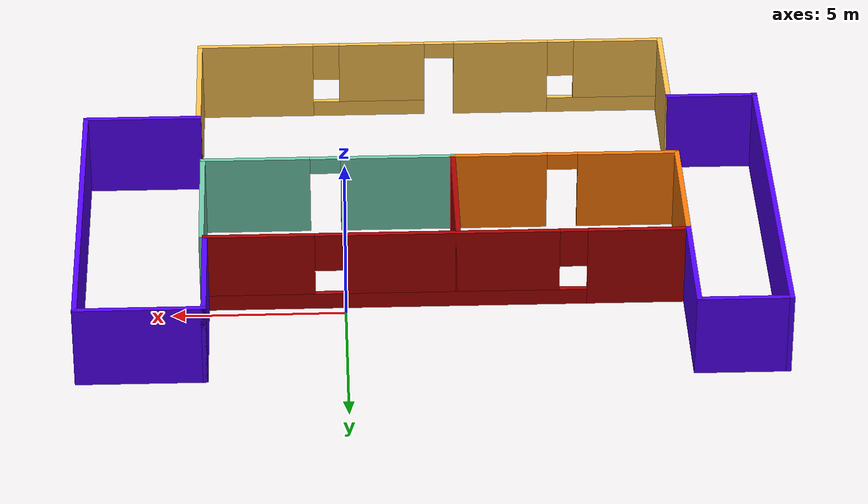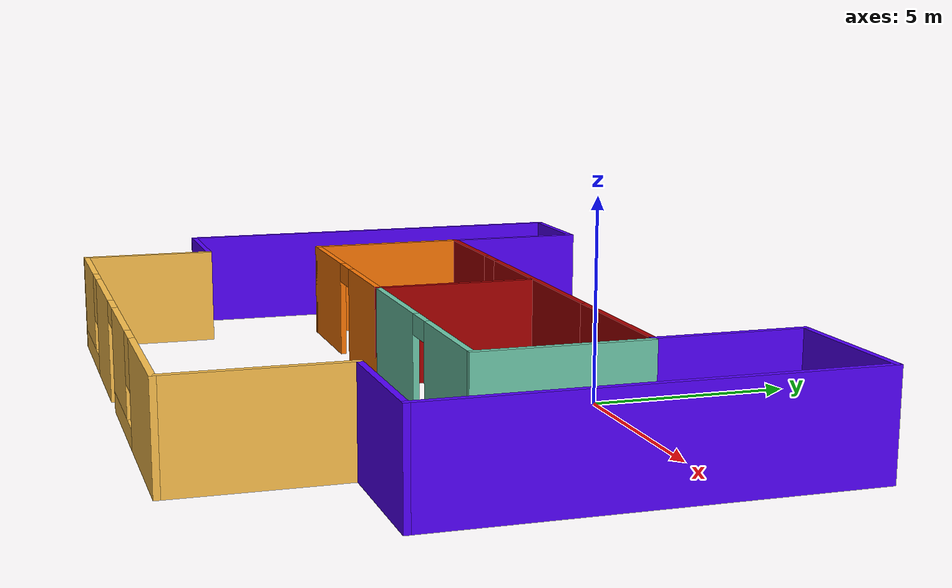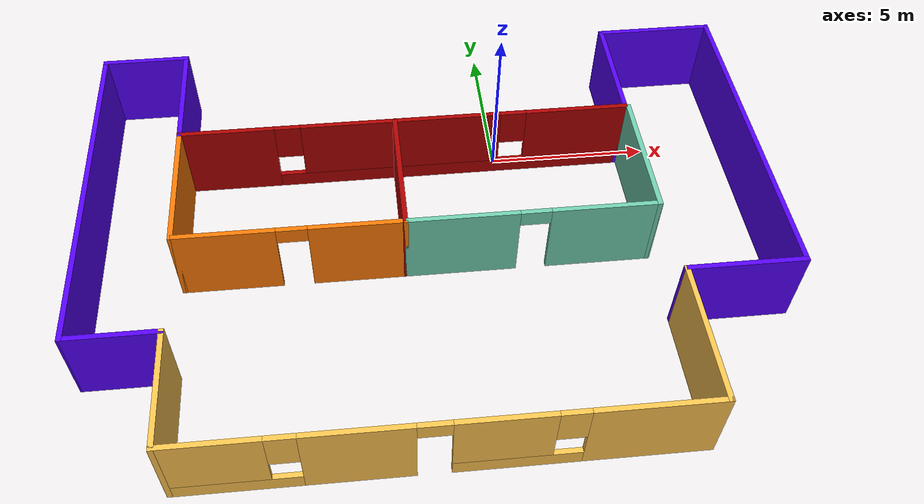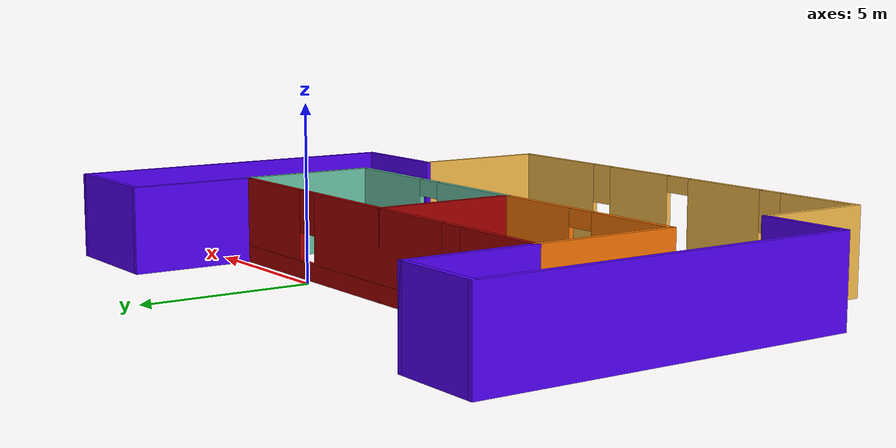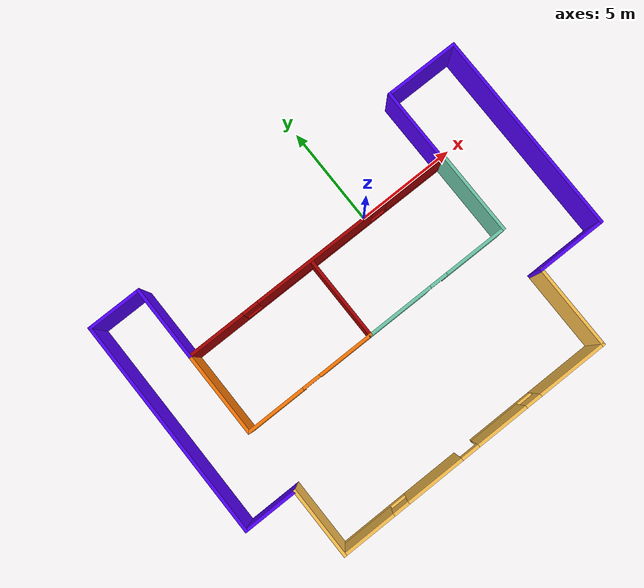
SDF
<?xml version='1.0'?>
<sdf version='1.6'>
  <model name='office'>
    <pose frame=''>-2.41181 -3.84011 0 0 -0 0</pose>
    <link name='Wall_1'>
      <collision name='Wall_1_Collision'>
        <geometry>
          <box>
            <size>2.75 0.15 2.5</size>
          </box>
        </geometry>
        <pose frame=''>0 0 1.25 0 -0 0</pose>
      </collision>
      <visual name='Wall_1_Visual'>
        <pose frame=''>0 0 1.25 0 -0 0</pose>
        <geometry>
          <box>
            <size>2.75 0.15 2.5</size>
          </box>
        </geometry>
        <material>
          <script>
            <uri>file://media/materials/scripts/gazebo.material</uri>
            <name>Gazebo/Grey</name>
          </script>
          <ambient>0.333333 0 1 1</ambient>
        </material>
        <meta>
          <layer>0</layer>
        </meta>
      </visual>
      <pose frame=''>-8.72481 7.09989 0 0 -0 0</pose>
    </link>
    <link name='Wall_10'>
      <collision name='Wall_10_Collision'>
        <geometry>
          <box>
            <size>3.5 0.15 2.5</size>
          </box>
        </geometry>
        <pose frame=''>0 0 1.25 0 -0 0</pose>
      </collision>
      <visual name='Wall_10_Visual'>
        <pose frame=''>0 0 1.25 0 -0 0</pose>
        <geometry>
          <box>
            <size>3.5 0.15 2.5</size>
          </box>
        </geometry>
        <material>
          <script>
            <uri>file://media/materials/scripts/gazebo.material</uri>
            <name>Gazebo/Grey</name>
          </script>
          <ambient>1 0.764706 0.305882 1</ambient>
        </material>
        <meta>
          <layer>0</layer>
        </meta>
      </visual>
      <pose frame=''>-7.42481 -5.42511 0 0 -0 1.5708</pose>
    </link>
    <link name='Wall_11'>
      <collision name='Wall_11_Collision'>
        <geometry>
          <box>
            <size>2.75 0.15 2.5</size>
          </box>
        </geometry>
        <pose frame=''>0 0 1.25 0 -0 0</pose>
      </collision>
      <visual name='Wall_11_Visual'>
        <pose frame=''>0 0 1.25 0 -0 0</pose>
        <geometry>
          <box>
            <size>2.75 0.15 2.5</size>
          </box>
        </geometry>
        <material>
          <script>
            <uri>file://media/materials/scripts/gazebo.material</uri>
            <name>Gazebo/Grey</name>
          </script>
          <ambient>0.333333 0 1 1</ambient>
        </material>
        <meta>
          <layer>0</layer>
        </meta>
      </visual>
      <pose frame=''>-8.725 -3.75 0 0 -0 3.14151</pose>
    </link>
    <link name='Wall_12'>
      <collision name='Wall_12_Collision'>
        <geometry>
          <box>
            <size>11 0.15 2.5</size>
          </box>
        </geometry>
        <pose frame=''>0 0 1.25 0 -0 0</pose>
      </collision>
      <visual name='Wall_12_Visual'>
        <pose frame=''>0 0 1.25 0 -0 0</pose>
        <geometry>
          <box>
            <size>11 0.15 2.5</size>
          </box>
        </geometry>
        <material>
          <script>
            <uri>file://media/materials/scripts/gazebo.material</uri>
            <name>Gazebo/Grey</name>
          </script>
          <ambient>0.333333 0 1 1</ambient>
        </material>
        <meta>
          <layer>0</layer>
        </meta>
      </visual>
      <pose frame=''>-10.0252 1.67511 0 0 -0 1.5708</pose>
    </link>
    <link name='Wall_14'>
      <collision name='Wall_14_Collision'>
        <geometry>
          <box>
            <size>4.25 0.15 2.5</size>
          </box>
        </geometry>
        <pose frame=''>0 0 1.25 0 -0 0</pose>
      </collision>
      <visual name='Wall_14_Visual'>
        <pose frame=''>0 0 1.25 0 -0 0</pose>
        <geometry>
          <box>
            <size>4.25 0.15 2.5</size>
          </box>
        </geometry>
        <material>
          <script>
            <uri>file://media/materials/scripts/gazebo.material</uri>
            <name>Gazebo/Grey</name>
          </script>
          <ambient>0.996078 0.47451 0.0196078 1</ambient>
        </material>
        <meta>
          <layer>0</layer>
        </meta>
      </visual>
      <pose frame=''>-7.42481 1.44989 0 0 0 -1.5708</pose>
    </link>
    <link name='Wall_15'>
      <pose frame=''>-4.12481 -0.60011 0 0 -0 0</pose>
      <visual name='Wall_15_Visual_0'>
        <pose frame=''>-1.87455 0 1.25 0 -0 0</pose>
        <geometry>
          <box>
            <size>3.0009 0.15 2.5</size>
          </box>
        </geometry>
        <material>
          <script>
            <uri>file://media/materials/scripts/gazebo.material</uri>
            <name>Gazebo/Grey</name>
          </script>
          <ambient>0.996078 0.47451 0.0196078 1</ambient>
        </material>
        <meta>
          <layer>0</layer>
        </meta>
      </visual>
      <collision name='Wall_15_Collision_0'>
        <geometry>
          <box>
            <size>3.0009 0.15 2.5</size>
          </box>
        </geometry>
        <pose frame=''>-1.87455 0 1.25 0 -0 0</pose>
      </collision>
      <visual name='Wall_15_Visual_1'>
        <pose frame=''>1.95045 0 1.25 0 -0 0</pose>
        <geometry>
          <box>
            <size>2.8491 0.15 2.5</size>
          </box>
        </geometry>
        <material>
          <script>
            <uri>file://media/materials/scripts/gazebo.material</uri>
            <name>Gazebo/Grey</name>
          </script>
          <ambient>0.996078 0.47451 0.0196078 1</ambient>
        </material>
        <meta>
          <layer>0</layer>
        </meta>
      </visual>
      <collision name='Wall_15_Collision_1'>
        <geometry>
          <box>
            <size>2.8491 0.15 2.5</size>
          </box>
        </geometry>
        <pose frame=''>1.95045 0 1.25 0 -0 0</pose>
      </collision>
      <visual name='Wall_15_Visual_2'>
        <pose frame=''>0.075898 0 2.25 0 -0 0</pose>
        <geometry>
          <box>
            <size>0.9 0.15 0.5</size>
          </box>
        </geometry>
        <material>
          <script>
            <uri>file://media/materials/scripts/gazebo.material</uri>
            <name>Gazebo/Grey</name>
          </script>
          <ambient>0.996078 0.47451 0.0196078 1</ambient>
        </material>
        <meta>
          <layer>0</layer>
        </meta>
      </visual>
      <collision name='Wall_15_Collision_2'>
        <geometry>
          <box>
            <size>0.9 0.15 0.5</size>
          </box>
        </geometry>
        <pose frame=''>0.075898 0 2.25 0 -0 0</pose>
      </collision>
    </link>
    <link name='Wall_16'>
      <collision name='Wall_16_Collision'>
        <geometry>
          <box>
            <size>4.25 0.15 2.5</size>
          </box>
        </geometry>
        <pose frame=''>0 0 1.25 0 -0 0</pose>
      </collision>
      <visual name='Wall_16_Visual'>
        <pose frame=''>0 0 1.25 0 -0 0</pose>
        <geometry>
          <box>
            <size>4.25 0.15 2.5</size>
          </box>
        </geometry>
        <material>
          <script>
            <uri>file://media/materials/scripts/gazebo.material</uri>
            <name>Gazebo/Grey</name>
          </script>
          <ambient>0.666667 0 0 1</ambient>
        </material>
        <meta>
          <layer>0</layer>
        </meta>
      </visual>
      <pose frame=''>-0.824806 1.44989 0 0 -0 1.5708</pose>
    </link>
    <link name='Wall_2'>
      <collision name='Wall_2_Collision'>
        <geometry>
          <box>
            <size>3.75 0.15 2.5</size>
          </box>
        </geometry>
        <pose frame=''>0 0 1.25 0 -0 0</pose>
      </collision>
      <visual name='Wall_2_Visual'>
        <pose frame=''>0 0 1.25 0 -0 0</pose>
        <geometry>
          <box>
            <size>3.75 0.15 2.5</size>
          </box>
        </geometry>
        <material>
          <script>
            <uri>file://media/materials/scripts/gazebo.material</uri>
            <name>Gazebo/Grey</name>
          </script>
          <ambient>0.333333 0 1 1</ambient>
        </material>
        <meta>
          <layer>0</layer>
        </meta>
      </visual>
      <pose frame=''>-7.42481 5.29989 0 0 0 -1.5708</pose>
    </link>
    <link name='Wall_20'>
      <pose frame=''>2.85019 -0.60011 0 0 -0 0</pose>
      <visual name='Wall_20_Visual_0'>
        <pose frame=''>-2.06026 0 1.25 0 -0 0</pose>
        <geometry>
          <box>
            <size>3.37949 0.15 2.5</size>
          </box>
        </geometry>
        <material>
          <script>
            <uri>file://media/materials/scripts/gazebo.material</uri>
            <name>Gazebo/Grey</name>
          </script>
          <ambient>0.435294 0.796078 0.67451 1</ambient>
        </material>
        <meta>
          <layer>0</layer>
        </meta>
      </visual>
      <collision name='Wall_20_Collision_0'>
        <geometry>
          <box>
            <size>3.37949 0.15 2.5</size>
          </box>
        </geometry>
        <pose frame=''>-2.06026 0 1.25 0 -0 0</pose>
      </collision>
      <visual name='Wall_20_Visual_1'>
        <pose frame=''>2.13974 0 1.25 0 -0 0</pose>
        <geometry>
          <box>
            <size>3.22051 0.15 2.5</size>
          </box>
        </geometry>
        <material>
          <script>
            <uri>file://media/materials/scripts/gazebo.material</uri>
            <name>Gazebo/Grey</name>
          </script>
          <ambient>0.435294 0.796078 0.67451 1</ambient>
        </material>
        <meta>
          <layer>0</layer>
        </meta>
      </visual>
      <collision name='Wall_20_Collision_1'>
        <geometry>
          <box>
            <size>3.22051 0.15 2.5</size>
          </box>
        </geometry>
        <pose frame=''>2.13974 0 1.25 0 -0 0</pose>
      </collision>
      <visual name='Wall_20_Visual_2'>
        <pose frame=''>0.079486 0 2.25 0 -0 0</pose>
        <geometry>
          <box>
            <size>0.9 0.15 0.5</size>
          </box>
        </geometry>
        <material>
          <script>
            <uri>file://media/materials/scripts/gazebo.material</uri>
            <name>Gazebo/Grey</name>
          </script>
          <ambient>0.435294 0.796078 0.67451 1</ambient>
        </material>
        <meta>
          <layer>0</layer>
        </meta>
      </visual>
      <collision name='Wall_20_Collision_2'>
        <geometry>
          <box>
            <size>0.9 0.15 0.5</size>
          </box>
        </geometry>
        <pose frame=''>0.079486 0 2.25 0 -0 0</pose>
      </collision>
    </link>
    <link name='Wall_21'>
      <collision name='Wall_21_Collision'>
        <geometry>
          <box>
            <size>4.2 0.15 2.5</size>
          </box>
        </geometry>
        <pose frame=''>0 0 1.25 0 -0 0</pose>
      </collision>
      <visual name='Wall_21_Visual'>
        <pose frame=''>0 0 1.25 0 -0 0</pose>
        <geometry>
          <box>
            <size>4.2 0.15 2.5</size>
          </box>
        </geometry>
        <material>
          <script>
            <uri>file://media/materials/scripts/gazebo.material</uri>
            <name>Gazebo/Grey</name>
          </script>
          <ambient>0.435294 0.796078 0.67451 1</ambient>
        </material>
        <meta>
          <layer>0</layer>
        </meta>
      </visual>
      <pose frame=''>6.52519 1.42489 0 0 -0 1.5708</pose>
    </link>
    <link name='Wall_3'>
      <pose frame=''>-0.499807 3.49989 0 0 -0 0</pose>
      <visual name='Wall_3_Visual_0'>
        <pose frame=''>-5.52107 0 1.25 0 -0 0</pose>
        <geometry>
          <box>
            <size>2.95785 0.15 2.5</size>
          </box>
        </geometry>
        <material>
          <script>
            <uri>file://media/materials/scripts/gazebo.material</uri>
            <name>Gazebo/Grey</name>
          </script>
          <ambient>0.666667 0 0 1</ambient>
        </material>
        <meta>
          <layer>0</layer>
        </meta>
      </visual>
      <collision name='Wall_3_Collision_0'>
        <geometry>
          <box>
            <size>2.95785 0.15 2.5</size>
          </box>
        </geometry>
        <pose frame=''>-5.52107 0 1.25 0 -0 0</pose>
      </collision>
      <visual name='Wall_3_Visual_1'>
        <pose frame=''>1.47893 0 0.25 0 -0 0</pose>
        <geometry>
          <box>
            <size>11.0421 0.15 0.5</size>
          </box>
        </geometry>
        <material>
          <script>
            <uri>file://media/materials/scripts/gazebo.material</uri>
            <name>Gazebo/Grey</name>
          </script>
          <ambient>0.666667 0 0 1</ambient>
        </material>
        <meta>
          <layer>0</layer>
        </meta>
      </visual>
      <collision name='Wall_3_Collision_1'>
        <geometry>
          <box>
            <size>11.0421 0.15 0.5</size>
          </box>
        </geometry>
        <pose frame=''>1.47893 0 0.25 0 -0 0</pose>
      </collision>
      <visual name='Wall_3_Visual_2'>
        <pose frame=''>-0.129594 0 1.5 0 -0 0</pose>
        <geometry>
          <box>
            <size>6.22511 0.15 2</size>
          </box>
        </geometry>
        <material>
          <script>
            <uri>file://media/materials/scripts/gazebo.material</uri>
            <name>Gazebo/Grey</name>
          </script>
          <ambient>0.666667 0 0 1</ambient>
        </material>
        <meta>
          <layer>0</layer>
        </meta>
      </visual>
      <collision name='Wall_3_Collision_2'>
        <geometry>
          <box>
            <size>6.22511 0.15 2</size>
          </box>
        </geometry>
        <pose frame=''>-0.129594 0 1.5 0 -0 0</pose>
      </collision>
      <visual name='Wall_3_Visual_3'>
        <pose frame=''>5.39148 0 1.5 0 -0 0</pose>
        <geometry>
          <box>
            <size>3.21704 0.15 2</size>
          </box>
        </geometry>
        <material>
          <script>
            <uri>file://media/materials/scripts/gazebo.material</uri>
            <name>Gazebo/Grey</name>
          </script>
          <ambient>0.666667 0 0 1</ambient>
        </material>
        <meta>
          <layer>0</layer>
        </meta>
      </visual>
      <collision name='Wall_3_Collision_3'>
        <geometry>
          <box>
            <size>3.21704 0.15 2</size>
          </box>
        </geometry>
        <pose frame=''>5.39148 0 1.5 0 -0 0</pose>
      </collision>
      <visual name='Wall_3_Visual_4'>
        <pose frame=''>-3.64215 0 1.9 0 -0 0</pose>
        <geometry>
          <box>
            <size>0.8 0.15 1.2</size>
          </box>
        </geometry>
        <material>
          <script>
            <uri>file://media/materials/scripts/gazebo.material</uri>
            <name>Gazebo/Grey</name>
          </script>
          <ambient>0.666667 0 0 1</ambient>
        </material>
        <meta>
          <layer>0</layer>
        </meta>
      </visual>
      <collision name='Wall_3_Collision_4'>
        <geometry>
          <box>
            <size>0.8 0.15 1.2</size>
          </box>
        </geometry>
        <pose frame=''>-3.64215 0 1.9 0 -0 0</pose>
      </collision>
      <visual name='Wall_3_Visual_5'>
        <pose frame=''>3.38296 0 1.9 0 -0 0</pose>
        <geometry>
          <box>
            <size>0.8 0.15 1.2</size>
          </box>
        </geometry>
        <material>
          <script>
            <uri>file://media/materials/scripts/gazebo.material</uri>
            <name>Gazebo/Grey</name>
          </script>
          <ambient>0.666667 0 0 1</ambient>
        </material>
        <meta>
          <layer>0</layer>
        </meta>
      </visual>
      <collision name='Wall_3_Collision_5'>
        <geometry>
          <box>
            <size>0.8 0.15 1.2</size>
          </box>
        </geometry>
        <pose frame=''>3.38296 0 1.9 0 -0 0</pose>
      </collision>
    </link>
    <link name='Wall_4'>
      <collision name='Wall_4_Collision'>
        <geometry>
          <box>
            <size>3.75 0.15 2.5</size>
          </box>
        </geometry>
        <pose frame=''>0 0 1.25 0 -0 0</pose>
      </collision>
      <visual name='Wall_4_Visual'>
        <pose frame=''>0 0 1.25 0 -0 0</pose>
        <geometry>
          <box>
            <size>3.75 0.15 2.5</size>
          </box>
        </geometry>
        <material>
          <script>
            <uri>file://media/materials/scripts/gazebo.material</uri>
            <name>Gazebo/Grey</name>
          </script>
          <ambient>0.333333 0 1 1</ambient>
        </material>
        <meta>
          <layer>0</layer>
        </meta>
      </visual>
      <pose frame=''>6.42519 5.29989 0 0 -0 1.5708</pose>
    </link>
    <link name='Wall_5'>
      <collision name='Wall_5_Collision'>
        <geometry>
          <box>
            <size>3.75 0.15 2.5</size>
          </box>
        </geometry>
        <pose frame=''>0 0 1.25 0 -0 0</pose>
      </collision>
      <visual name='Wall_5_Visual'>
        <pose frame=''>0 0 1.25 0 -0 0</pose>
        <geometry>
          <box>
            <size>3.75 0.15 2.5</size>
          </box>
        </geometry>
        <material>
          <script>
            <uri>file://media/materials/scripts/gazebo.material</uri>
            <name>Gazebo/Grey</name>
          </script>
          <ambient>0.333333 0 1 1</ambient>
        </material>
        <meta>
          <layer>0</layer>
        </meta>
      </visual>
      <pose frame=''>8.22519 7.09989 0 0 -0 0</pose>
    </link>
    <link name='Wall_6'>
      <collision name='Wall_6_Collision'>
        <geometry>
          <box>
            <size>10.25 0.15 2.5</size>
          </box>
        </geometry>
        <pose frame=''>0 0 1.25 0 -0 0</pose>
      </collision>
      <visual name='Wall_6_Visual'>
        <pose frame=''>0 0 1.25 0 -0 0</pose>
        <geometry>
          <box>
            <size>10.25 0.15 2.5</size>
          </box>
        </geometry>
        <material>
          <script>
            <uri>file://media/materials/scripts/gazebo.material</uri>
            <name>Gazebo/Grey</name>
          </script>
          <ambient>0.333333 0 1 1</ambient>
        </material>
        <meta>
          <layer>0</layer>
        </meta>
      </visual>
      <pose frame=''>10.0252 2.04989 0 0 0 -1.5708</pose>
    </link>
    <link name='Wall_7'>
      <collision name='Wall_7_Collision'>
        <geometry>
          <box>
            <size>3.5 0.15 2.5</size>
          </box>
        </geometry>
        <pose frame=''>0 0 1.25 0 -0 0</pose>
      </collision>
      <visual name='Wall_7_Visual'>
        <pose frame=''>0 0 1.25 0 -0 0</pose>
        <geometry>
          <box>
            <size>3.5 0.15 2.5</size>
          </box>
        </geometry>
        <material>
          <script>
            <uri>file://media/materials/scripts/gazebo.material</uri>
            <name>Gazebo/Grey</name>
          </script>
          <ambient>0.333333 0 1 1</ambient>
        </material>
        <meta>
          <layer>0</layer>
        </meta>
      </visual>
      <pose frame=''>8.35019 -3.00011 0 0 -0 3.14159</pose>
    </link>
    <link name='Wall_8'>
      <collision name='Wall_8_Collision'>
        <geometry>
          <box>
            <size>4.25 0.15 2.5</size>
          </box>
        </geometry>
        <pose frame=''>0 0 1.25 0 -0 0</pose>
      </collision>
      <visual name='Wall_8_Visual'>
        <pose frame=''>0 0 1.25 0 -0 0</pose>
        <geometry>
          <box>
            <size>4.25 0.15 2.5</size>
          </box>
        </geometry>
        <material>
          <script>
            <uri>file://media/materials/scripts/gazebo.material</uri>
            <name>Gazebo/Grey</name>
          </script>
          <ambient>1 0.764706 0.305882 1</ambient>
        </material>
        <meta>
          <layer>0</layer>
        </meta>
      </visual>
      <pose frame=''>6.67519 -5.05011 0 0 0 -1.5708</pose>
    </link>
    <link name='Wall_9'>
      <pose frame=''>-0.374807 -7.10011 0 0 -0 3.14159</pose>
      <visual name='Wall_9_Visual_0'>
        <pose frame=''>-5.36218 0 1.25 0 -0 0</pose>
        <geometry>
          <box>
            <size>3.52564 0.15 2.5</size>
          </box>
        </geometry>
        <material>
          <script>
            <uri>file://media/materials/scripts/gazebo.material</uri>
            <name>Gazebo/Grey</name>
          </script>
          <ambient>1 0.764706 0.305882 1</ambient>
        </material>
        <meta>
          <layer>0</layer>
        </meta>
      </visual>
      <collision name='Wall_9_Collision_0'>
        <geometry>
          <box>
            <size>3.52564 0.15 2.5</size>
          </box>
        </geometry>
        <pose frame=''>-5.36218 0 1.25 0 -0 0</pose>
      </collision>
      <visual name='Wall_9_Visual_1'>
        <pose frame=''>2.15948 0 1.25 0 -0 0</pose>
        <geometry>
          <box>
            <size>2.89305 0.15 2.5</size>
          </box>
        </geometry>
        <material>
          <script>
            <uri>file://media/materials/scripts/gazebo.material</uri>
            <name>Gazebo/Grey</name>
          </script>
          <ambient>1 0.764706 0.305882 1</ambient>
        </material>
        <meta>
          <layer>0</layer>
        </meta>
      </visual>
      <collision name='Wall_9_Collision_1'>
        <geometry>
          <box>
            <size>2.89305 0.15 2.5</size>
          </box>
        </geometry>
        <pose frame=''>2.15948 0 1.25 0 -0 0</pose>
      </collision>
      <visual name='Wall_9_Visual_2'>
        <pose frame=''>-1.8932 0 0.25 0 -0 0</pose>
        <geometry>
          <box>
            <size>3.41232 0.15 0.5</size>
          </box>
        </geometry>
        <material>
          <script>
            <uri>file://media/materials/scripts/gazebo.material</uri>
            <name>Gazebo/Grey</name>
          </script>
          <ambient>1 0.764706 0.305882 1</ambient>
        </material>
        <meta>
          <layer>0</layer>
        </meta>
      </visual>
      <collision name='Wall_9_Collision_2'>
        <geometry>
          <box>
            <size>3.41232 0.15 0.5</size>
          </box>
        </geometry>
        <pose frame=''>-1.8932 0 0.25 0 -0 0</pose>
      </collision>
      <visual name='Wall_9_Visual_3'>
        <pose frame=''>5.3655 0 0.25 0 -0 0</pose>
        <geometry>
          <box>
            <size>3.51899 0.15 0.5</size>
          </box>
        </geometry>
        <material>
          <script>
            <uri>file://media/materials/scripts/gazebo.material</uri>
            <name>Gazebo/Grey</name>
          </script>
          <ambient>1 0.764706 0.305882 1</ambient>
        </material>
        <meta>
          <layer>0</layer>
        </meta>
      </visual>
      <collision name='Wall_9_Collision_3'>
        <geometry>
          <box>
            <size>3.51899 0.15 0.5</size>
          </box>
        </geometry>
        <pose frame=''>5.3655 0 0.25 0 -0 0</pose>
      </collision>
      <visual name='Wall_9_Visual_4'>
        <pose frame=''>-1.4932 0 1.5 0 -0 0</pose>
        <geometry>
          <box>
            <size>2.61232 0.15 2</size>
          </box>
        </geometry>
        <material>
          <script>
            <uri>file://media/materials/scripts/gazebo.material</uri>
            <name>Gazebo/Grey</name>
          </script>
          <ambient>1 0.764706 0.305882 1</ambient>
        </material>
        <meta>
          <layer>0</layer>
        </meta>
      </visual>
      <collision name='Wall_9_Collision_4'>
        <geometry>
          <box>
            <size>2.61232 0.15 2</size>
          </box>
        </geometry>
        <pose frame=''>-1.4932 0 1.5 0 -0 0</pose>
      </collision>
      <visual name='Wall_9_Visual_5'>
        <pose frame=''>-1.4932 0 1.5 0 -0 0</pose>
        <geometry>
          <box>
            <size>2.61232 0.15 2</size>
          </box>
        </geometry>
        <material>
          <script>
            <uri>file://media/materials/scripts/gazebo.material</uri>
            <name>Gazebo/Grey</name>
          </script>
          <ambient>1 0.764706 0.305882 1</ambient>
        </material>
        <meta>
          <layer>0</layer>
        </meta>
      </visual>
      <collision name='Wall_9_Collision_5'>
        <geometry>
          <box>
            <size>2.61232 0.15 2</size>
          </box>
        </geometry>
        <pose frame=''>-1.4932 0 1.5 0 -0 0</pose>
      </collision>
      <visual name='Wall_9_Visual_6'>
        <pose frame=''>5.7655 0 1.5 0 -0 0</pose>
        <geometry>
          <box>
            <size>2.71899 0.15 2</size>
          </box>
        </geometry>
        <material>
          <script>
            <uri>file://media/materials/scripts/gazebo.material</uri>
            <name>Gazebo/Grey</name>
          </script>
          <ambient>1 0.764706 0.305882 1</ambient>
        </material>
        <meta>
          <layer>0</layer>
        </meta>
      </visual>
      <collision name='Wall_9_Collision_6'>
        <geometry>
          <box>
            <size>2.71899 0.15 2</size>
          </box>
        </geometry>
        <pose frame=''>5.7655 0 1.5 0 -0 0</pose>
      </collision>
      <visual name='Wall_9_Visual_7'>
        <pose frame=''>-3.19936 0 1.9 0 -0 0</pose>
        <geometry>
          <box>
            <size>0.8 0.15 1.2</size>
          </box>
        </geometry>
        <material>
          <script>
            <uri>file://media/materials/scripts/gazebo.material</uri>
            <name>Gazebo/Grey</name>
          </script>
          <ambient>1 0.764706 0.305882 1</ambient>
        </material>
        <meta>
          <layer>0</layer>
        </meta>
      </visual>
      <collision name='Wall_9_Collision_7'>
        <geometry>
          <box>
            <size>0.8 0.15 1.2</size>
          </box>
        </geometry>
        <pose frame=''>-3.19936 0 1.9 0 -0 0</pose>
      </collision>
      <visual name='Wall_9_Visual_8'>
        <pose frame=''>4.00601 0 1.9 0 -0 0</pose>
        <geometry>
          <box>
            <size>0.8 0.15 1.2</size>
          </box>
        </geometry>
        <material>
          <script>
            <uri>file://media/materials/scripts/gazebo.material</uri>
            <name>Gazebo/Grey</name>
          </script>
          <ambient>1 0.764706 0.305882 1</ambient>
        </material>
        <meta>
          <layer>0</layer>
        </meta>
      </visual>
      <collision name='Wall_9_Collision_8'>
        <geometry>
          <box>
            <size>0.8 0.15 1.2</size>
          </box>
        </geometry>
        <pose frame=''>4.00601 0 1.9 0 -0 0</pose>
      </collision>
      <visual name='Wall_9_Visual_9'>
        <pose frame=''>0.262957 0 2.25 0 -0 0</pose>
        <geometry>
          <box>
            <size>0.9 0.15 0.5</size>
          </box>
        </geometry>
        <material>
          <script>
            <uri>file://media/materials/scripts/gazebo.material</uri>
            <name>Gazebo/Grey</name>
          </script>
          <ambient>1 0.764706 0.305882 1</ambient>
        </material>
        <meta>
          <layer>0</layer>
        </meta>
      </visual>
      <collision name='Wall_9_Collision_9'>
        <geometry>
          <box>
            <size>0.9 0.15 0.5</size>
          </box>
        </geometry>
        <pose frame=''>0.262957 0 2.25 0 -0 0</pose>
      </collision>
      <visual name='Wall_9_Visual_10'>
        <pose frame=''>0.262957 0 2.25 0 -0 0</pose>
        <geometry>
          <box>
            <size>0.9 0.15 0.5</size>
          </box>
        </geometry>
        <material>
          <script>
            <uri>file://media/materials/scripts/gazebo.material</uri>
            <name>Gazebo/Grey</name>
          </script>
          <ambient>1 0.764706 0.305882 1</ambient>
        </material>
        <meta>
          <layer>0</layer>
        </meta>
      </visual>
      <collision name='Wall_9_Collision_10'>
        <geometry>
          <box>
            <size>0.9 0.15 0.5</size>
          </box>
        </geometry>
        <pose frame=''>0.262957 0 2.25 0 -0 0</pose>
      </collision>
    </link>
    <static>1</static>
  </model>
</sdf>
